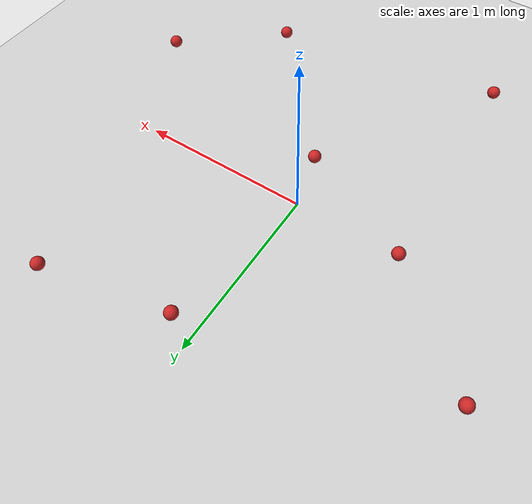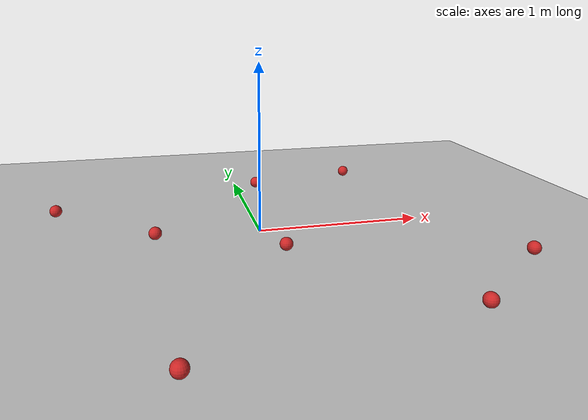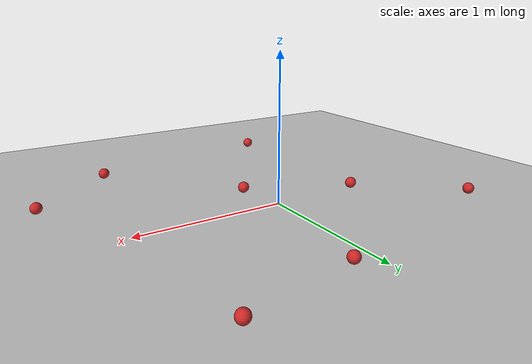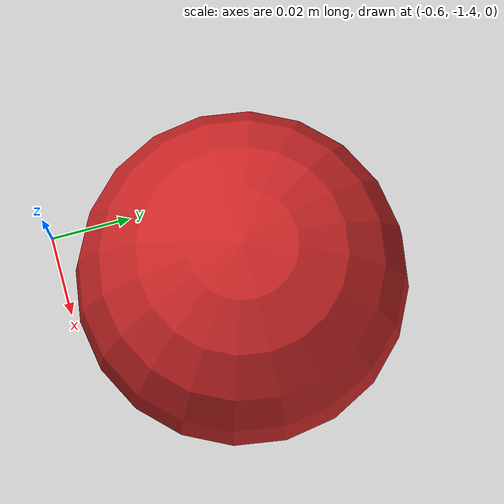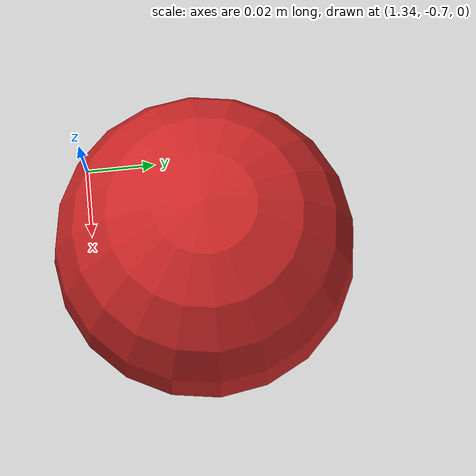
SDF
<sdf version="1.6">
 <world name="default">
  <light name="sun" type="directional">
   <pose>0 0 10 0 -0 0</pose>
   <diffuse>0.8 0.8 0.8 1</diffuse>
   <specular>0.2 0.2 0.2 1</specular>
   <attenuation>
    <range>1000</range>
    <constant>0.9</constant>
    <linear>0.01</linear>
    <quadratic>0.001</quadratic>
   </attenuation>
   <direction>-0.5 0.1 -0.9</direction>
  </light>
  <model name="ground_plane">
   <static>1</static>
   <link name="link">
    <collision name="collision">
     <geometry><plane><normal>0 0 1</normal><size>100 100</size></plane></geometry>
     <surface><friction><ode><mu>100</mu><mu2>50</mu2></ode></friction></surface>
    </collision>
    <visual name="visual">
     <cast_shadows>0</cast_shadows>
     <geometry><plane><normal>0 0 1</normal><size>100 100</size></plane></geometry>
     <material>
      <script><uri>file://media/materials/scripts/gazebo.material</uri><name>Gazebo/Grey</name></script>
     </material>
    </visual>
   </link>
  </model>
  <physics name="default_physics" default="0" type="ode">
   <real_time_update_rate>1000</real_time_update_rate>
   <max_step_size>0.001</max_step_size>
   <real_time_factor>1</real_time_factor>
   <ode>
    <solver>
     <type>quick</type>
     <iters>150</iters>
     <precon_iters>0</precon_iters>
     <sor>1.4</sor>
     <use_dynamic_moi_rescaling>1</use_dynamic_moi_rescaling>
    </solver>
    <constraints>
     <cfm>1e-05</cfm>
     <erp>0.2</erp>
     <contact_max_correcting_vel>2000</contact_max_correcting_vel>
     <contact_surface_layer>0.01</contact_surface_layer>
    </constraints>
   </ode>
  </physics>
  <scene><ambient>0.4 0.4 0.4 1</ambient><background>0.7 0.7 0.7 1</background><shadows>1</shadows></scene>
  <gravity>0 0 -9.8</gravity>
  <magnetic_field>6e-06 2.3e-05 -4.2e-05</magnetic_field>
  <atmosphere type="adiabatic"/>
  <spherical_coordinates>
   <surface_model>EARTH_WGS84</surface_model>
   <latitude_deg>0</latitude_deg>
   <longitude_deg>0</longitude_deg>
   <elevation>0</elevation>
   <heading_deg>0</heading_deg>
  </spherical_coordinates>
  <model name="cricket_ball">
   <link name="link">
    <pose>0 0 0.0375 0 -0 0</pose>
    <inertial>
     <mass>0.1467</mass>
     <inertia>
      <ixx>8.25187e-05</ixx>
      <ixy>0</ixy>
      <ixz>0</ixz>
      <iyy>8.25187e-05</iyy>
      <iyz>0</iyz>
      <izz>8.25187e-05</izz>
     </inertia>
    </inertial>
    <collision name="collision">
     <geometry><sphere><radius>0.0375</radius></sphere></geometry>
     <surface>
      <contact>
       <poissons_ratio>0.347</poissons_ratio>
       <elastic_modulus>8.8e+09</elastic_modulus>
       <ode><kp>100000</kp><kd>100</kd><max_vel>100</max_vel><min_depth>0.001</min_depth></ode>
      </contact>
      <friction>
       <torsional>
        <coefficient>1</coefficient>
        <use_patch_radius>0</use_patch_radius>
        <surface_radius>0.01</surface_radius>
       </torsional>
      </friction>
     </surface>
    </collision>
    <visual name="visual">
     <geometry><sphere><radius>0.0375</radius></sphere></geometry>
     <material>
      <script><uri>file://media/materials/scripts/gazebo.material</uri><name>Gazebo/Red</name></script>
     </material>
    </visual>
    <velocity_decay><linear>0</linear><angular>0.005</angular></velocity_decay>
   </link>
   <pose>0.08406 -0.316633 -0.001014 0 -0 0</pose>
  </model>
  <model name="cricket_ball_0">
   <link name="link">
    <pose>0 0 0.0375 0 -0 0</pose>
    <inertial>
     <mass>0.1467</mass>
     <inertia>
      <ixx>8.25187e-05</ixx>
      <ixy>0</ixy>
      <ixz>0</ixz>
      <iyy>8.25187e-05</iyy>
      <iyz>0</iyz>
      <izz>8.25187e-05</izz>
     </inertia>
    </inertial>
    <collision name="collision">
     <geometry><sphere><radius>0.0375</radius></sphere></geometry>
     <surface>
      <contact>
       <poissons_ratio>0.347</poissons_ratio>
       <elastic_modulus>8.8e+09</elastic_modulus>
       <ode><kp>100000</kp><kd>100</kd><max_vel>100</max_vel><min_depth>0.001</min_depth></ode>
      </contact>
      <friction>
       <torsional>
        <coefficient>1</coefficient>
        <use_patch_radius>0</use_patch_radius>
        <surface_radius>0.01</surface_radius>
       </torsional>
      </friction>
     </surface>
    </collision>
    <visual name="visual">
     <geometry><sphere><radius>0.0375</radius></sphere></geometry>
     <material>
      <script><uri>file://media/materials/scripts/gazebo.material</uri><name>Gazebo/Red</name></script>
     </material>
    </visual>
    <velocity_decay><linear>0</linear><angular>0.005</angular></velocity_decay>
   </link>
   <pose>0.146464 0.890799 -0.001014 0 -0 0</pose>
  </model>
  <model name="cricket_ball_1">
   <link name="link">
    <pose>0 0 0.0375 0 -0 0</pose>
    <inertial>
     <mass>0.1467</mass>
     <inertia>
      <ixx>8.25187e-05</ixx>
      <ixy>0</ixy>
      <ixz>0</ixz>
      <iyy>8.25187e-05</iyy>
      <iyz>0</iyz>
      <izz>8.25187e-05</izz>
     </inertia>
    </inertial>
    <collision name="collision">
     <geometry><sphere><radius>0.0375</radius></sphere></geometry>
     <surface>
      <contact>
       <poissons_ratio>0.347</poissons_ratio>
       <elastic_modulus>8.8e+09</elastic_modulus>
       <ode><kp>100000</kp><kd>100</kd><max_vel>100</max_vel><min_depth>0.001</min_depth></ode>
      </contact>
      <friction>
       <torsional>
        <coefficient>1</coefficient>
        <use_patch_radius>0</use_patch_radius>
        <surface_radius>0.01</surface_radius>
       </torsional>
      </friction>
     </surface>
    </collision>
    <visual name="visual">
     <geometry><sphere><radius>0.0375</radius></sphere></geometry>
     <material>
      <script><uri>file://media/materials/scripts/gazebo.material</uri><name>Gazebo/Red</name></script>
     </material>
    </visual>
    <velocity_decay><linear>0</linear><angular>0.005</angular></velocity_decay>
   </link>
   <pose>-1.21887 0.534263 -0.001014 0 -0 0</pose>
  </model>
  <model name="cricket_ball_2">
   <link name="link">
    <pose>0 0 0.0375 0 -0 0</pose>
    <inertial>
     <mass>0.1467</mass>
     <inertia>
      <ixx>8.25187e-05</ixx>
      <ixy>0</ixy>
      <ixz>0</ixz>
      <iyy>8.25187e-05</iyy>
      <iyz>0</iyz>
      <izz>8.25187e-05</izz>
     </inertia>
    </inertial>
    <collision name="collision">
     <geometry><sphere><radius>0.0375</radius></sphere></geometry>
     <surface>
      <contact>
       <poissons_ratio>0.347</poissons_ratio>
       <elastic_modulus>8.8e+09</elastic_modulus>
       <ode><kp>100000</kp><kd>100</kd><max_vel>100</max_vel><min_depth>0.001</min_depth></ode>
      </contact>
      <friction>
       <torsional>
        <coefficient>1</coefficient>
        <use_patch_radius>0</use_patch_radius>
        <surface_radius>0.01</surface_radius>
       </torsional>
      </friction>
     </surface>
    </collision>
    <visual name="visual">
     <geometry><sphere><radius>0.0375</radius></sphere></geometry>
     <material>
      <script><uri>file://media/materials/scripts/gazebo.material</uri><name>Gazebo/Red</name></script>
     </material>
    </visual>
    <velocity_decay><linear>0</linear><angular>0.005</angular></velocity_decay>
   </link>
   <pose>-0.570625 -1.3588 -0.001014 0 -0 0</pose>
  </model>
  <model name="cricket_ball_3">
   <link name="link">
    <pose>0 0 0.0375 0 -0 0</pose>
    <inertial>
     <mass>0.1467</mass>
     <inertia>
      <ixx>8.25187e-05</ixx>
      <ixy>0</ixy>
      <ixz>0</ixz>
      <iyy>8.25187e-05</iyy>
      <iyz>0</iyz>
      <izz>8.25187e-05</izz>
     </inertia>
    </inertial>
    <collision name="collision">
     <geometry><sphere><radius>0.0375</radius></sphere></geometry>
     <surface>
      <contact>
       <poissons_ratio>0.347</poissons_ratio>
       <elastic_modulus>8.8e+09</elastic_modulus>
       <ode><kp>100000</kp><kd>100</kd><max_vel>100</max_vel><min_depth>0.001</min_depth></ode>
      </contact>
      <friction>
       <torsional>
        <coefficient>1</coefficient>
        <use_patch_radius>0</use_patch_radius>
        <surface_radius>0.01</surface_radius>
       </torsional>
      </friction>
     </surface>
    </collision>
    <visual name="visual">
     <geometry><sphere><radius>0.0375</radius></sphere></geometry>
     <material>
      <script><uri>file://media/materials/scripts/gazebo.material</uri><name>Gazebo/Red</name></script>
     </material>
    </visual>
    <velocity_decay><linear>0</linear><angular>0.005</angular></velocity_decay>
   </link>
   <pose>1.37696 -0.668947 -0.001014 0 -0 0</pose>
  </model>
  <model name="cricket_ball_4">
   <link name="link">
    <pose>0 0 0.0375 0 -0 0</pose>
    <inertial>
     <mass>0.1467</mass>
     <inertia>
      <ixx>8.25187e-05</ixx>
      <ixy>0</ixy>
      <ixz>0</ixz>
      <iyy>8.25187e-05</iyy>
      <iyz>0</iyz>
      <izz>8.25187e-05</izz>
     </inertia>
    </inertial>
    <collision name="collision">
     <geometry><sphere><radius>0.0375</radius></sphere></geometry>
     <surface>
      <contact>
       <poissons_ratio>0.347</poissons_ratio>
       <elastic_modulus>8.8e+09</elastic_modulus>
       <ode><kp>100000</kp><kd>100</kd><max_vel>100</max_vel><min_depth>0.001</min_depth></ode>
      </contact>
      <friction>
       <torsional>
        <coefficient>1</coefficient>
        <use_patch_radius>0</use_patch_radius>
        <surface_radius>0.01</surface_radius>
       </torsional>
      </friction>
     </surface>
    </collision>
    <visual name="visual">
     <geometry><sphere><radius>0.0375</radius></sphere></geometry>
     <material>
      <script><uri>file://media/materials/scripts/gazebo.material</uri><name>Gazebo/Red</name></script>
     </material>
    </visual>
    <velocity_decay><linear>0</linear><angular>0.005</angular></velocity_decay>
   </link>
   <pose>0.883892 1.0443 -0.001014 0 -0 0</pose>
  </model>
  <model name="cricket_ball_5">
   <link name="link">
    <pose>0 0 0.0375 0 -0 0</pose>
    <inertial>
     <mass>0.1467</mass>
     <inertia>
      <ixx>8.25187e-05</ixx>
      <ixy>0</ixy>
      <ixz>0</ixz>
      <iyy>8.25187e-05</iyy>
      <iyz>0</iyz>
      <izz>8.25187e-05</izz>
     </inertia>
    </inertial>
    <collision name="collision">
     <geometry><sphere><radius>0.0375</radius></sphere></geometry>
     <surface>
      <contact>
       <poissons_ratio>0.347</poissons_ratio>
       <elastic_modulus>8.8e+09</elastic_modulus>
       <ode><kp>100000</kp><kd>100</kd><max_vel>100</max_vel><min_depth>0.001</min_depth></ode>
      </contact>
      <friction>
       <torsional>
        <coefficient>1</coefficient>
        <use_patch_radius>0</use_patch_radius>
        <surface_radius>0.01</surface_radius>
       </torsional>
      </friction>
     </surface>
    </collision>
    <visual name="visual">
     <geometry><sphere><radius>0.0375</radius></sphere></geometry>
     <material>
      <script><uri>file://media/materials/scripts/gazebo.material</uri><name>Gazebo/Red</name></script>
     </material>
    </visual>
    <velocity_decay><linear>0</linear><angular>0.005</angular></velocity_decay>
   </link>
   <pose>0.814441 -1.14523 -0.001014 0 -0 0</pose>
  </model>
  <model name="cricket_ball_6">
   <link name="link">
    <pose>0 0 0.0375 0 -0 0</pose>
    <inertial>
     <mass>0.1467</mass>
     <inertia>
      <ixx>8.25187e-05</ixx>
      <ixy>0</ixy>
      <ixz>0</ixz>
      <iyy>8.25187e-05</iyy>
      <iyz>0</iyz>
      <izz>8.25187e-05</izz>
     </inertia>
    </inertial>
    <collision name="collision">
     <geometry><sphere><radius>0.0375</radius></sphere></geometry>
     <surface>
      <contact>
       <poissons_ratio>0.347</poissons_ratio>
       <elastic_modulus>8.8e+09</elastic_modulus>
       <ode><kp>100000</kp><kd>100</kd><max_vel>100</max_vel><min_depth>0.001</min_depth></ode>
      </contact>
      <friction>
       <torsional>
        <coefficient>1</coefficient>
        <use_patch_radius>0</use_patch_radius>
        <surface_radius>0.01</surface_radius>
       </torsional>
      </friction>
     </surface>
    </collision>
    <visual name="visual">
     <geometry><sphere><radius>0.0375</radius></sphere></geometry>
     <material>
      <script><uri>file://media/materials/scripts/gazebo.material</uri><name>Gazebo/Red</name></script>
     </material>
    </visual>
    <velocity_decay><linear>0</linear><angular>0.005</angular></velocity_decay>
   </link>
   <pose>-0.613628 0.003157 -0.001014 0 -0 0</pose>
  </model>
 </world>
</sdf>
